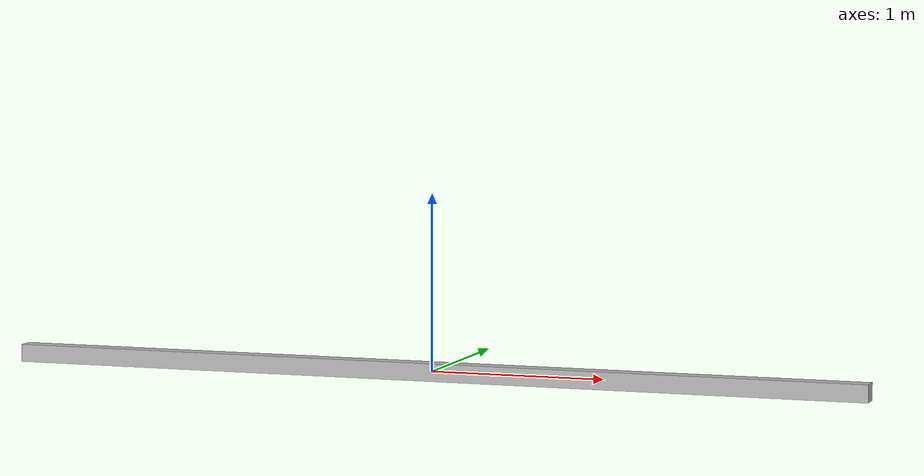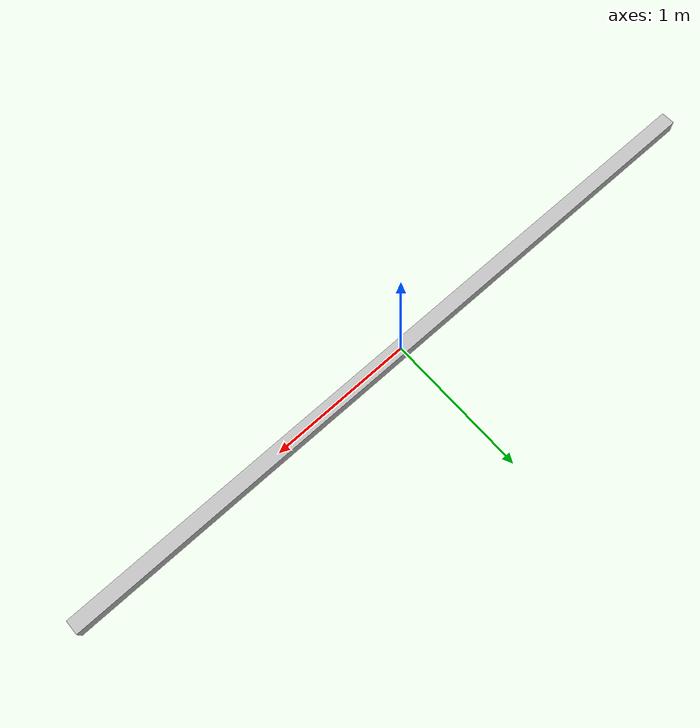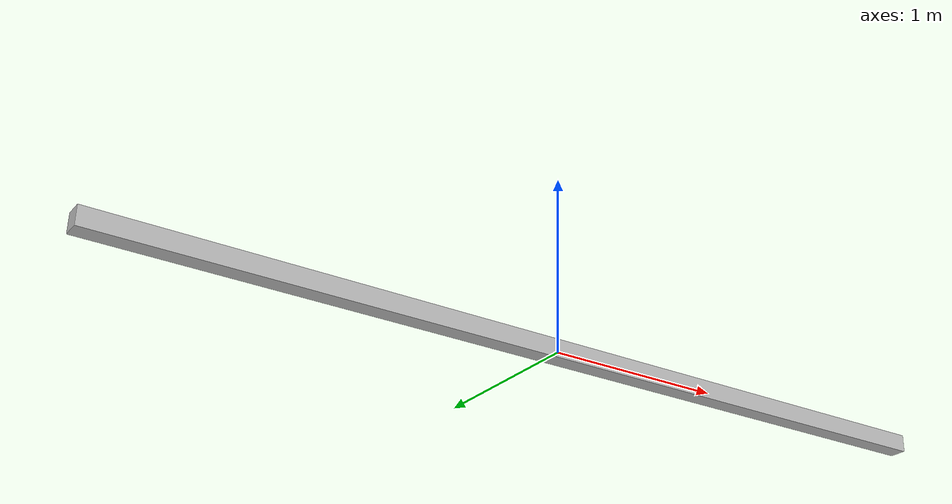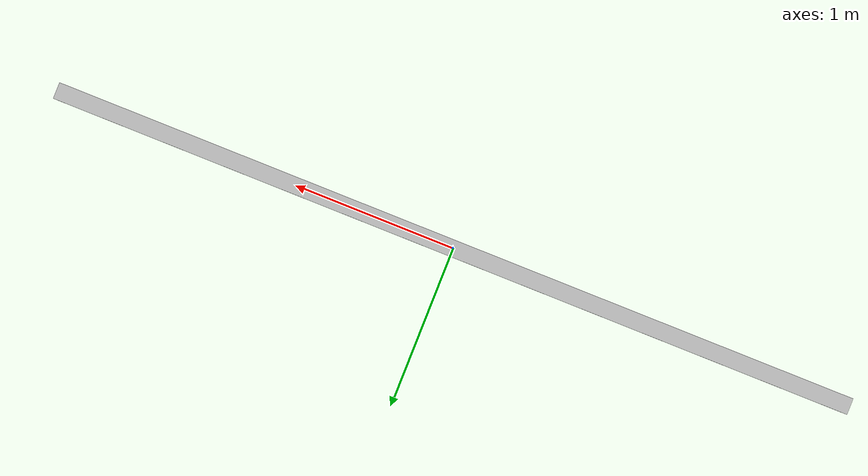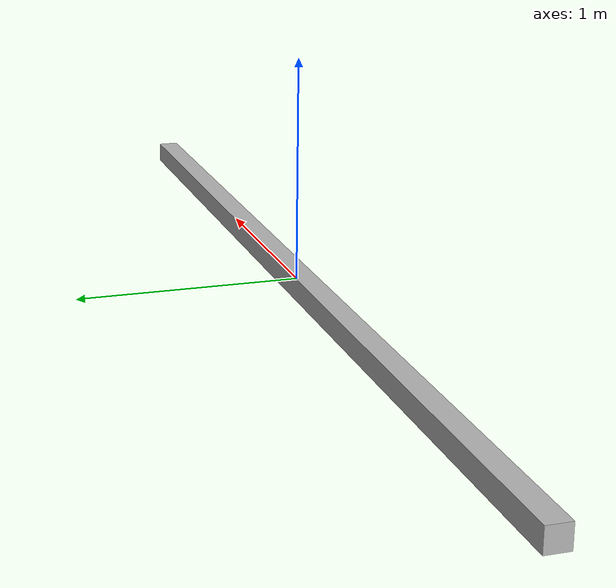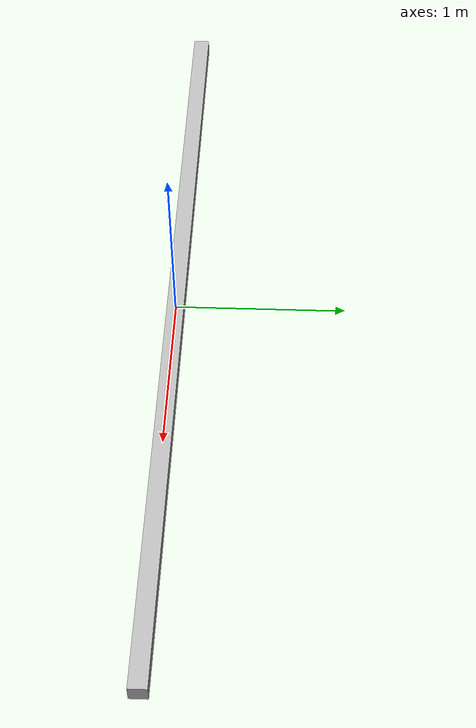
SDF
<?xml version='1.0'?>
<sdf version='1.6'>
  <model name="compliant_platform.sdf">

    <link name='branch'>

      <pose frame=''>0 0 0 0 0 0</pose>
      <collision name='collision'>
        <pose frame=''>0 0 0 0 0 0</pose>
        <geometry>
          <box>
            <!-- 9 0.045 0.01    OG dimensions with bungee cords-->
            <size>5 0.1 0.1</size>
          </box>
        </geometry>
        <surface>
          <friction>
            <ode>
              <mu>1.5</mu>
              <mu2>2</mu2>
            </ode>
          </friction>
        </surface>
      </collision>

      <visual name='visual'>
        <pose frame=''>0 0 0 0 0 0</pose>
        <geometry>
          <box>
            <size>5 0.1 0.1</size>
          </box>
        </geometry>
      </visual>

    </link>

  </model>
</sdf>
